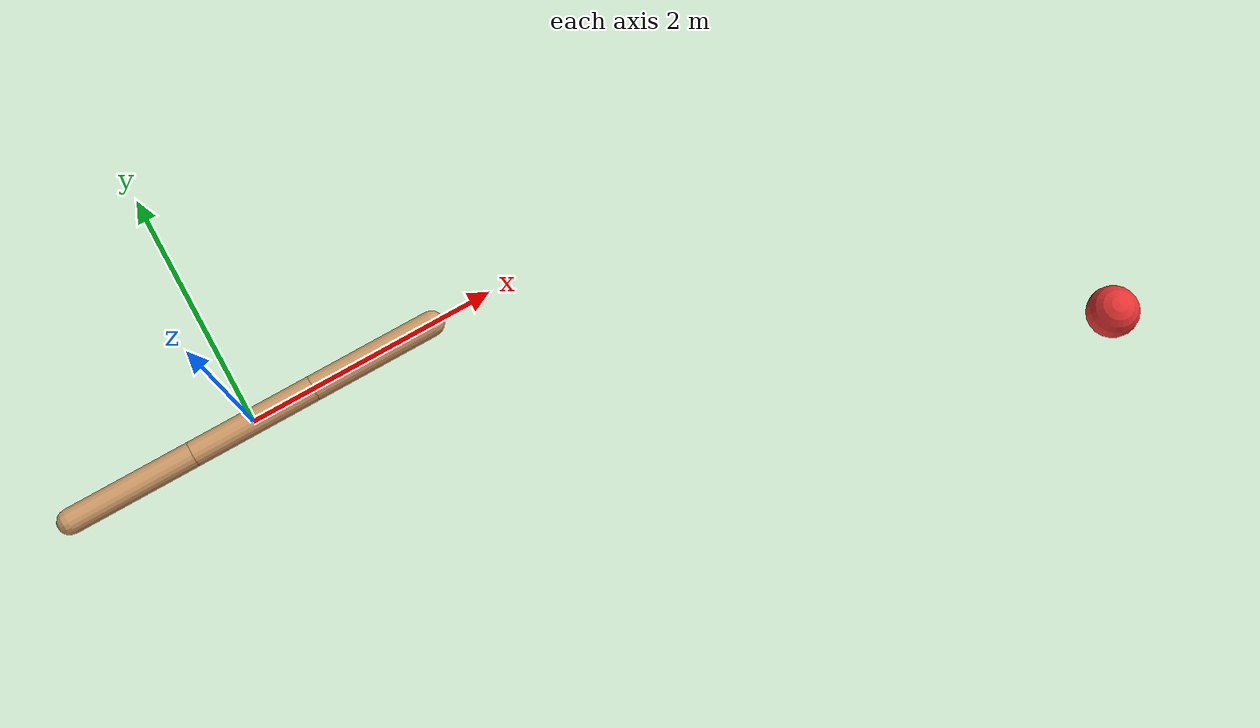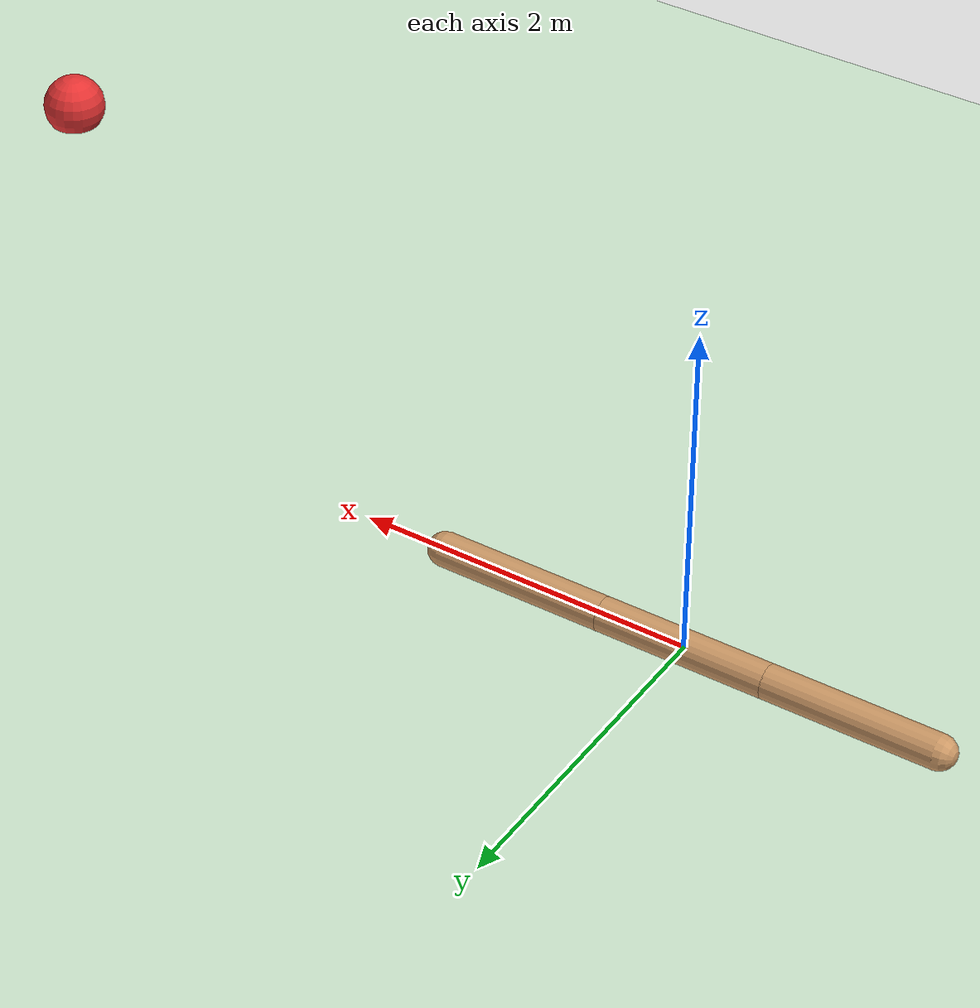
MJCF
<mujoco model="swimmer">
  <compiler angle="degree" coordinate="local" inertiafromgeom="true" />
  <option collision="predefined" density="4000" integrator="RK4" timestep="0.01" viscosity="0.1" />
  <default>
    <geom conaffinity="1" condim="1" contype="1" material="geom" rgba="0.8 0.6 .4 1" />
    <joint armature="0.1" />
  </default>
  <asset>
    <texture type="skybox" builtin="gradient" width="100" height="100" rgb1="1 1 1" rgb2="0 0 0" />
    <texture name="texgeom" type="cube" builtin="flat" mark="cross" width="127" height="1278" rgb1="0.8 0.6 0.4" rgb2="0.8 0.6 0.4" markrgb="1 1 1" random="0.01" />
    <texture name="texplane" type="2d" builtin="checker" rgb1="0.2 0.3 0.4" rgb2="0.1 0.2 0.3" width="100" height="100" />
    <material name='MatPlane' texture="texplane" shininess="1" texrepeat="60 60" specular="1"  reflectance="0.5" />
    <material name='geom' texture="texgeom" texuniform="true" />
  </asset>
  <worldbody>
    <geom conaffinity="1" condim="3" material="MatPlane" name="floor" pos="0 0 -0.1" rgba="0.8 0.9 0.8 1" size="40 40 0.1" type="plane" />
    <!--  ================= SWIMMER ================= /-->
    <body name="torso" pos="0 0 0">
      <camera name="track" mode="trackcom" pos="0 -3 3" xyaxes="1 0 0 0 1 1" />
      <geom name="frontbody" density="1000" fromto="1.5 0 0 0.5 0 0" size="0.1" type="capsule" />
      <joint axis="1 0 0" name="slider1" pos="0 0 0" type="slide" />
      <joint axis="0 1 0" name="slider2" pos="0 0 0" type="slide" />
      <joint axis="0 0 1" name="rot" pos="0 0 0" type="hinge" />
      <body name="mid" pos="0.5 0 0">
        <geom name="midbody" density="1000" fromto="0 0 0 -1 0 0" size="0.1" type="capsule" />
        <joint axis="0 0 1" limited="true" name="rot2" pos="0 0 0" range="-100 100" type="hinge" />
        <body name="back" pos="-1 0 0">
          <geom name="backbody" density="1000" fromto="0 0 0 -1 0 0" size="0.1" type="capsule" />
          <joint axis="0 0 1" limited="true" name="rot3" pos="0 0 0" range="-100 100" type="hinge" />
        </body>
      </body>
    </body>
		<body name="target" pos="6 -2.5 .01">
			<joint armature="0" axis="1 0 0" damping="0" limited="true" name="target_x" pos="0 0 0" range="-.27 .27" ref=".1" stiffness="0" type="slide"/>
			<joint armature="0" axis="0 1 0" damping="0" limited="true" name="target_y" pos="0 0 0" range="-.27 .27" ref="-.1" stiffness="0" type="slide"/>
			<geom conaffinity="0" contype="0" name="target" pos="0 0 0" rgba="0.9 0.2 0.2 1" size=".2" type="sphere"/>
		</body>
  </worldbody>
  <actuator>
    <motor ctrllimited="true" ctrlrange="-1 1" gear="150.0" joint="rot2" />
    <motor ctrllimited="true" ctrlrange="-1 1" gear="150.0" joint="rot3" />
  </actuator>
</mujoco>
